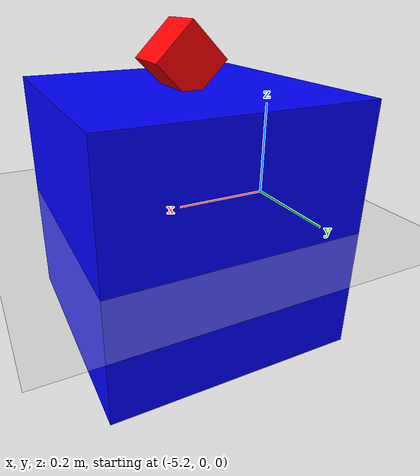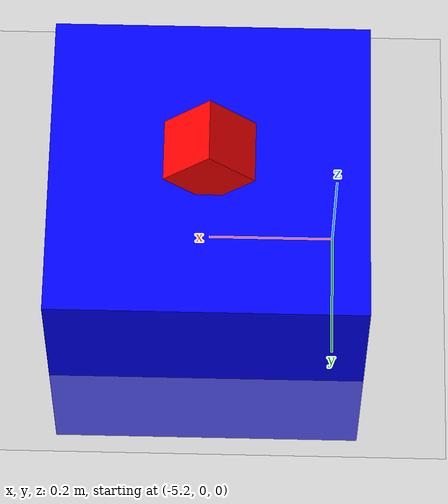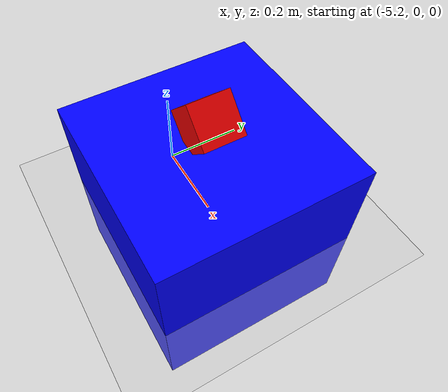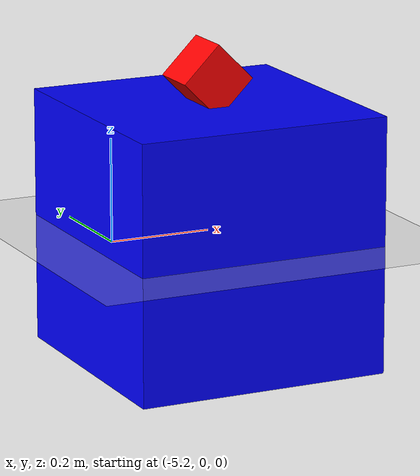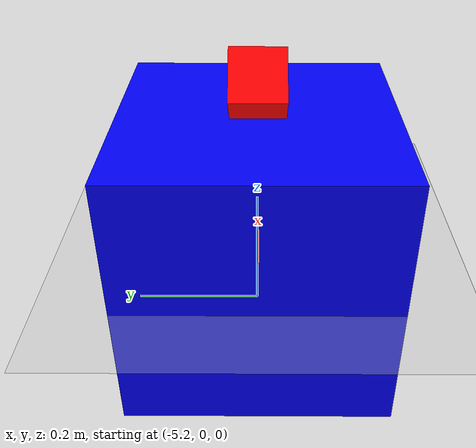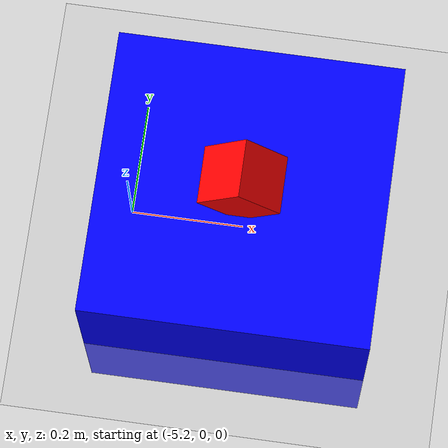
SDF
<?xml version="1.0" ?>
<sdf version="1.8">
    <world name="meu_mundo">
        <!--INICIO DOS PLUGINS DO MUNDO-->
        <plugin
	    filename="libignition-gazebo-sensors-system"
	    name="ignition::gazebo::systems::Sensors">
	    <render_engine>ogre2</render_engine>
        </plugin>

        <plugin
            filename="libignition-gazebo-physics-system"
            name="ignition::gazebo::systems::Physics">
        </plugin>

        <plugin
            filename="libignition-gazebo-scene-broadcaster-system"
            name="ignition::gazebo::systems::SceneBroadcaster">
        </plugin>

        <physics name="1ms" type="ignored">
            <max_step_size>0.001</max_step_size>
            <real_time_factor>1.0</real_time_factor>
        </physics>

        <plugin
            filename="libignition-gazebo-user-commands-system.so"
            name="ignition::gazebo::systems::UserCommands">
        </plugin>

        <plugin filename="libignition-gazebo-triggered-publisher-system.so"
                name="ignition::gazebo::systems::TriggeredPublisher">
	    <input type="ignition.msgs.Boolean" topic="/wall/touched">
	        <match>data: true</match>
	    </input>
	    <output type="ignition.msgs.Twist" topic="/cmd_vel">
	        linear: {x: 0.0}, angular: {z: 0.0}
	    </output>
	</plugin>

        <!--FIM DOS PLUGINS DO MUNDO-->

        <light type="directional" name="sun">
            <cast_shadows>true</cast_shadows>
            <pose>0 0 10 0 0 0</pose>
            <diffuse>0.8 0.8 0.8 1</diffuse>
            <specular>0.2 0.2 0.2 1</specular>
            <attenuation>
                <range>1000</range>
                <constant>0.9</constant>
                <linear>0.01</linear>
                <quadratic>0.001</quadratic>
            </attenuation>
            <direction>-0.5 0.1 -0.9</direction>
        </light>

        <model name="ground_plane">
            <static>true</static>
            <link name="link">
                <collision name="collision">
                <geometry>
                    <plane>
                    <normal>0 0 1</normal>
                    </plane>
                </geometry>
                </collision>
                <visual name="visual">
                <geometry>
                    <plane>
                    <normal>0 0 1</normal>
                    <size>100 100</size>
                    </plane>
                </geometry>
                <material>
                    <ambient>0.8 0.8 0.8 1</ambient>
                    <diffuse>0.8 0.8 0.8 1</diffuse>
                    <specular>0.8 0.8 0.8 1</specular>
                </material>
                </visual>
            </link>
        </model>

        <model name='wall'>
            <static>true</static>
            <pose>-5 0 0 0 0 0</pose><!--pose relative to the world-->
            <link name='box'>
                <visual name='visual'>
                    <geometry>
                        <box>
                            <size>0.5 0.5 0.5</size>
                        </box>
                    </geometry>
                    <material>
                        <ambient>0.0 0.0 1.0 1</ambient>
                        <diffuse>0.0 0.0 1.0 1</diffuse>
                        <specular>0.0 0.0 1.0 1</specular>
                    </material>
                </visual>
                <collision name='collision'>
                    <geometry>
                        <box>
                            <size>0.5 0.5 0.5</size>
                        </box>
                    </geometry>
                </collision>

                <sensor type="camera" name="camera">
	                <pose relative_to="box">0.0 0.0 0.7 0 0 0</pose>
	                <topic>camera</topic>
        	        <update_rate>30.0</update_rate>
	                <camera name="head">
	                    <horizontal_fov>1.3962634</horizontal_fov>
	                    <image>
	                        <width>800</width>
	                        <height>800</height>
	                        <format>R8G8B8</format>
	                    </image>
	                    <clip>
	                        <near>0.02</near>
	                        <far>300</far>
	                    </clip>
	                    <noise>
	                        <type>gaussian</type>
	                        <mean>0.0</mean>
	                        <stddev>0.007</stddev>
	                    </noise>
	                </camera>
	            </sensor>
            </link>

            <link name="camera">
                <pose relative_to="box">0.0 0 0.30 0 3.9269 0</pose>
                <visual name='visual'>
                    <geometry>
                        <box>
                            <size>0.1 0.1 0.1</size>
                        </box>
                    </geometry>
                    <material>
                        <ambient>1.0 0.0 0.0 1</ambient>
                        <diffuse>1.0 0.0 0.0 1</diffuse>
                        <specular>1.0 0.0 0.0 1</specular>
                    </material>
                </visual>
                <collision name='collision'>
                    <geometry>
                        <box>
                            <size>0.1 0.1 0.1</size>
                        </box>
                    </geometry>
                </collision>
                <inertial>
                    <mass>0.1</mass>
                    <inertia>
                        <ixx>0.043333</ixx>
                        <ixy>0</ixy>
                        <ixz>0</ixz>
                        <iyy>0.043333</iyy>
                        <iyz>0</iyz>
                        <izz>0.08</izz>
                    </inertia>
                </inertial>
            </link>

            <joint name='camera_joint' type="fixed">
                <pose relative_to='box'> 0 0 0.3 0 0 3.1415 </pose>
                <parent>box</parent>
                <child>camera</child>
            </joint>

        </model>
    </world>
</sdf>
